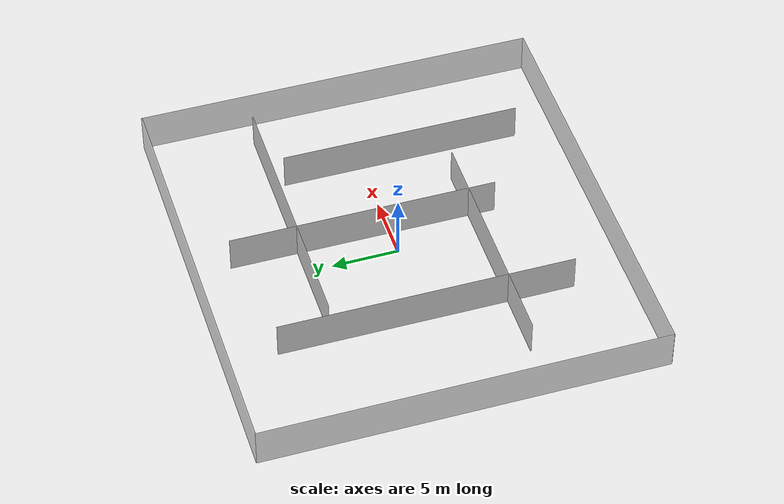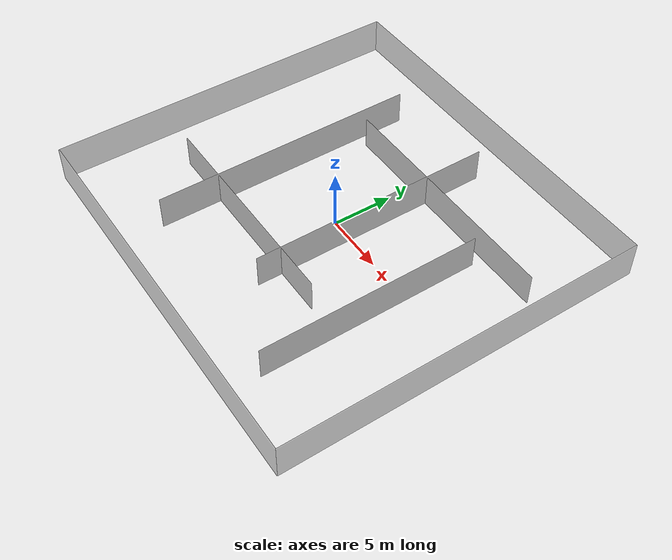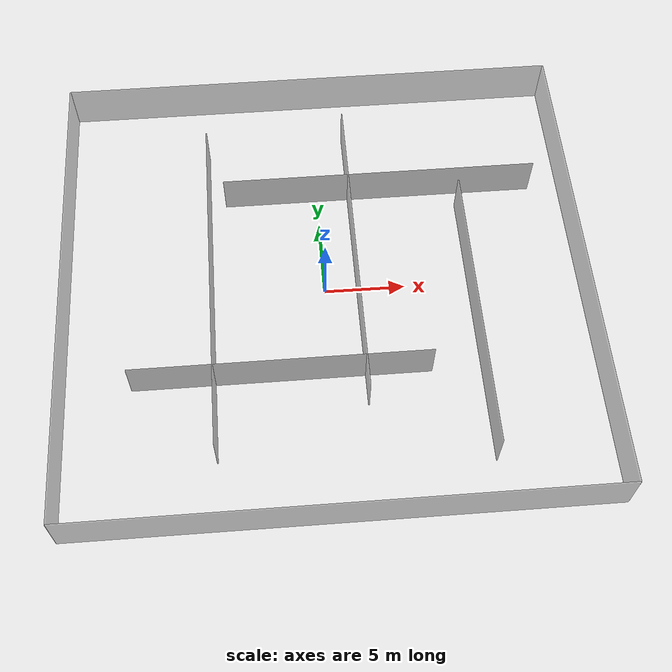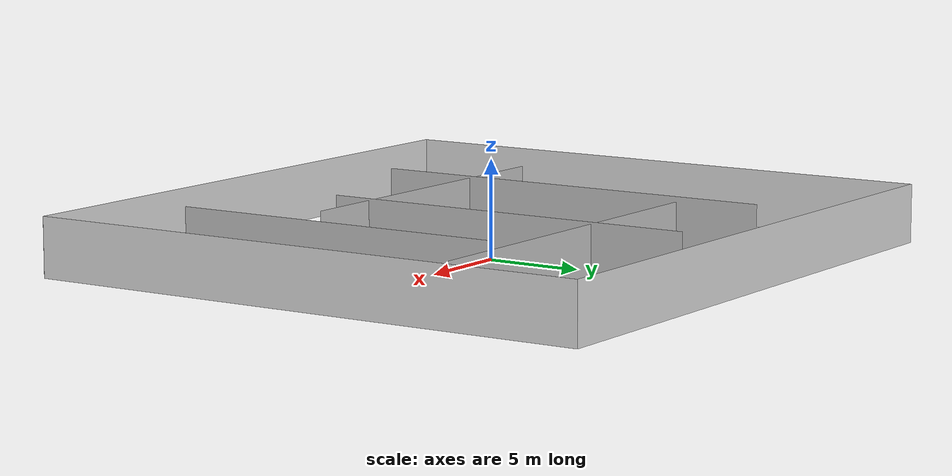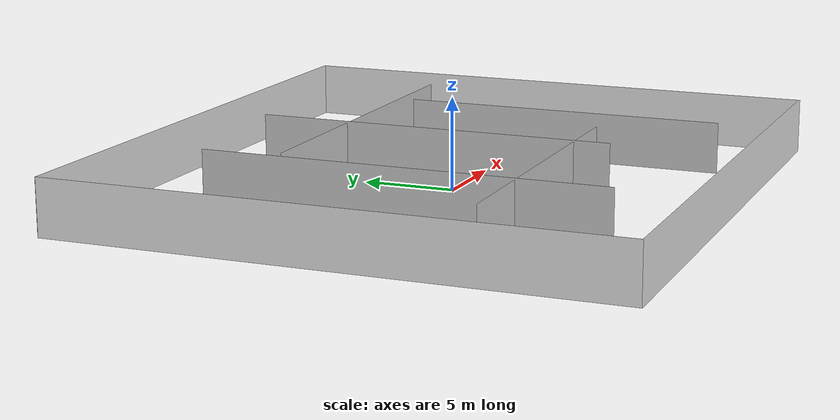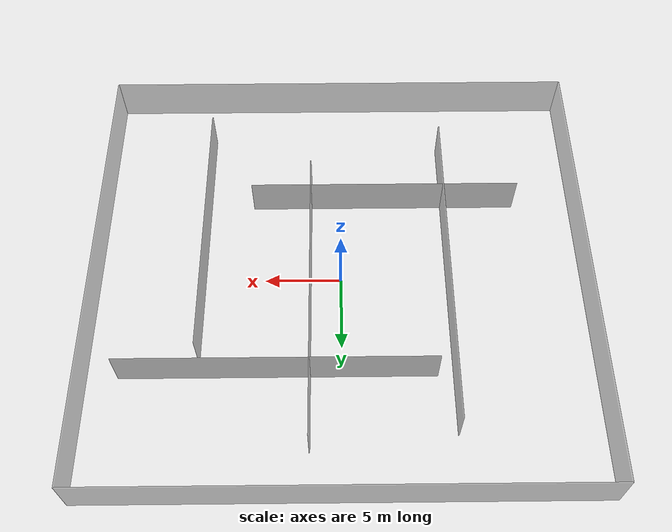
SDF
<?xml version="1.0"?>
<sdf version="1.6">
  <model name="garage_wall_proxy">
    <static>true</static>
    <link name="walls">
      <visual name="outer_north">
        <pose>0 15 1.5 0 0 0</pose>
        <geometry><box><size>32 0.08 3.0</size></box></geometry>
        <material><ambient>0.32 0.32 0.32 0.45</ambient><diffuse>0.42 0.42 0.42 0.45</diffuse></material>
        <cast_shadows>false</cast_shadows>
      </visual>
      <visual name="outer_south">
        <pose>0 -15 1.5 0 0 0</pose>
        <geometry><box><size>32 0.08 3.0</size></box></geometry>
        <material><ambient>0.32 0.32 0.32 0.45</ambient><diffuse>0.42 0.42 0.42 0.45</diffuse></material>
        <cast_shadows>false</cast_shadows>
      </visual>
      <visual name="outer_east">
        <pose>16 0 1.5 0 0 0</pose>
        <geometry><box><size>0.08 30 3.0</size></box></geometry>
        <material><ambient>0.32 0.32 0.32 0.45</ambient><diffuse>0.42 0.42 0.42 0.45</diffuse></material>
        <cast_shadows>false</cast_shadows>
      </visual>
      <visual name="outer_west">
        <pose>-16 0 1.5 0 0 0</pose>
        <geometry><box><size>0.08 30 3.0</size></box></geometry>
        <material><ambient>0.32 0.32 0.32 0.45</ambient><diffuse>0.42 0.42 0.42 0.45</diffuse></material>
        <cast_shadows>false</cast_shadows>
      </visual>
      <visual name="inner_wall_1">
        <pose>-7 0 1.4 0 0 0</pose>
        <geometry><box><size>0.06 22 2.8</size></box></geometry>
        <material><ambient>0.22 0.22 0.22 0.5</ambient><diffuse>0.30 0.30 0.30 0.5</diffuse></material>
        <cast_shadows>false</cast_shadows>
      </visual>
      <visual name="inner_wall_2">
        <pose>2 2 1.4 0 0 0</pose>
        <geometry><box><size>0.06 20 2.8</size></box></geometry>
        <material><ambient>0.22 0.22 0.22 0.5</ambient><diffuse>0.30 0.30 0.30 0.5</diffuse></material>
        <cast_shadows>false</cast_shadows>
      </visual>
      <visual name="inner_wall_3">
        <pose>9 -3 1.4 0 0 0</pose>
        <geometry><box><size>0.06 18 2.8</size></box></geometry>
        <material><ambient>0.22 0.22 0.22 0.5</ambient><diffuse>0.30 0.30 0.30 0.5</diffuse></material>
        <cast_shadows>false</cast_shadows>
      </visual>
      <visual name="cross_wall_1">
        <pose>-3 -6 1.35 0 0 0</pose>
        <geometry><box><size>18 0.06 2.7</size></box></geometry>
        <material><ambient>0.24 0.24 0.24 0.5</ambient><diffuse>0.32 0.32 0.32 0.5</diffuse></material>
        <cast_shadows>false</cast_shadows>
      </visual>
      <visual name="cross_wall_2">
        <pose>4 7 1.35 0 0 0</pose>
        <geometry><box><size>20 0.06 2.7</size></box></geometry>
        <material><ambient>0.24 0.24 0.24 0.5</ambient><diffuse>0.32 0.32 0.32 0.5</diffuse></material>
        <cast_shadows>false</cast_shadows>
      </visual>
    </link>
  </model>
</sdf>
